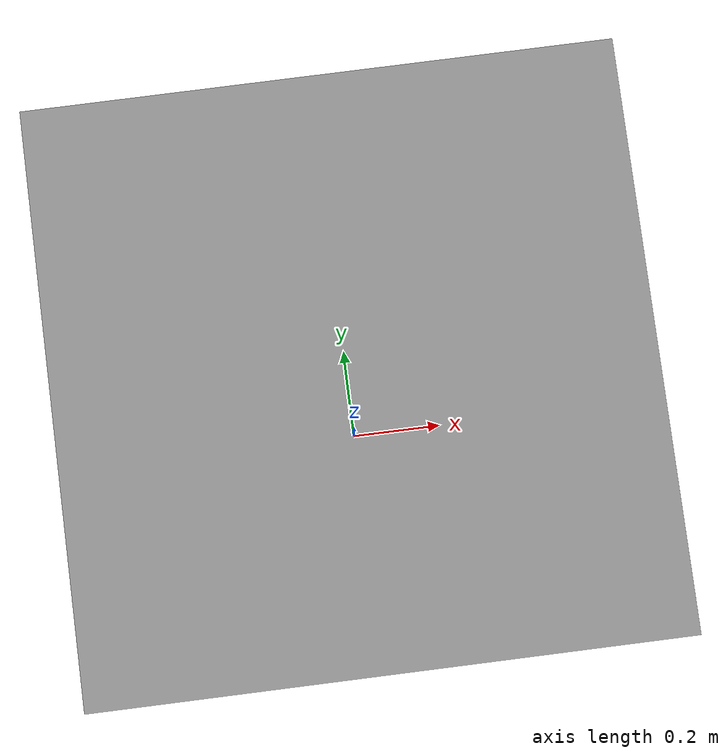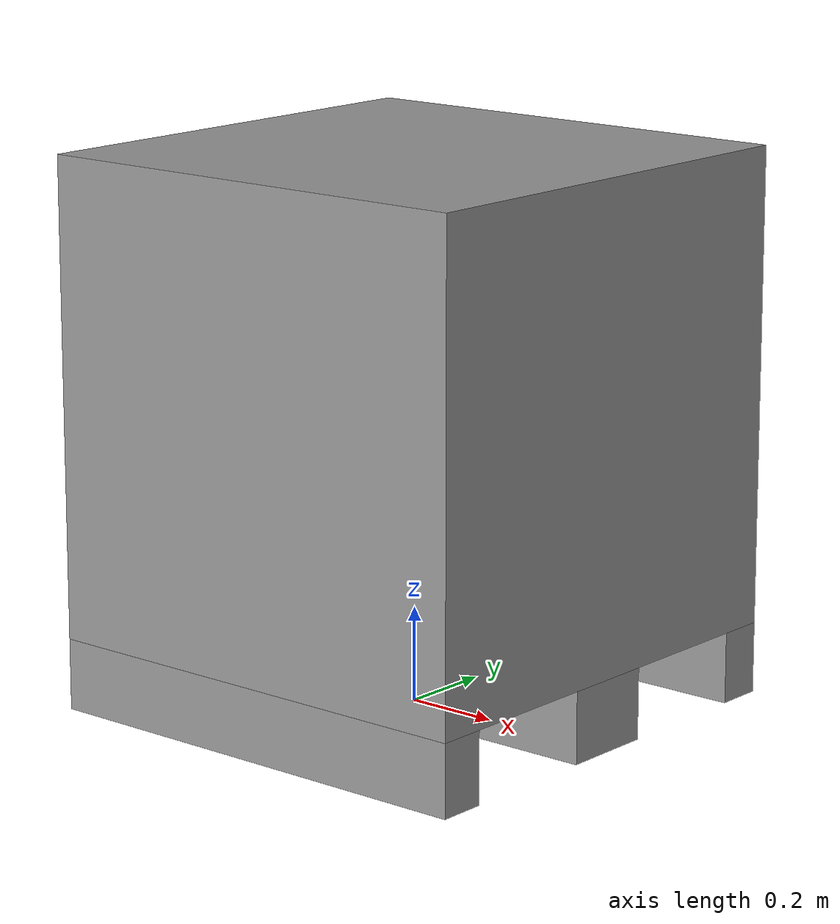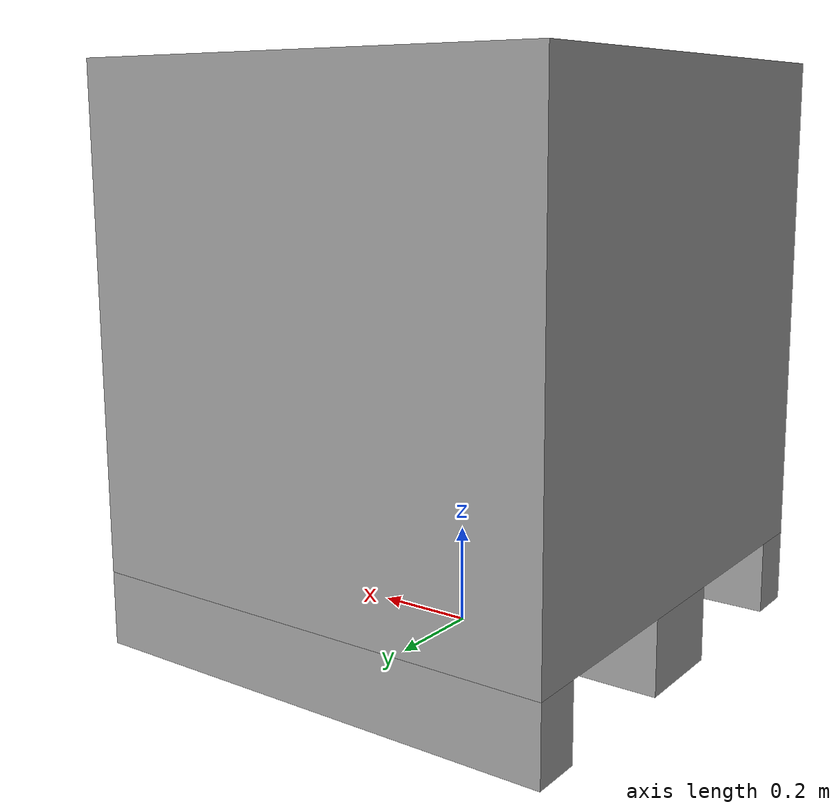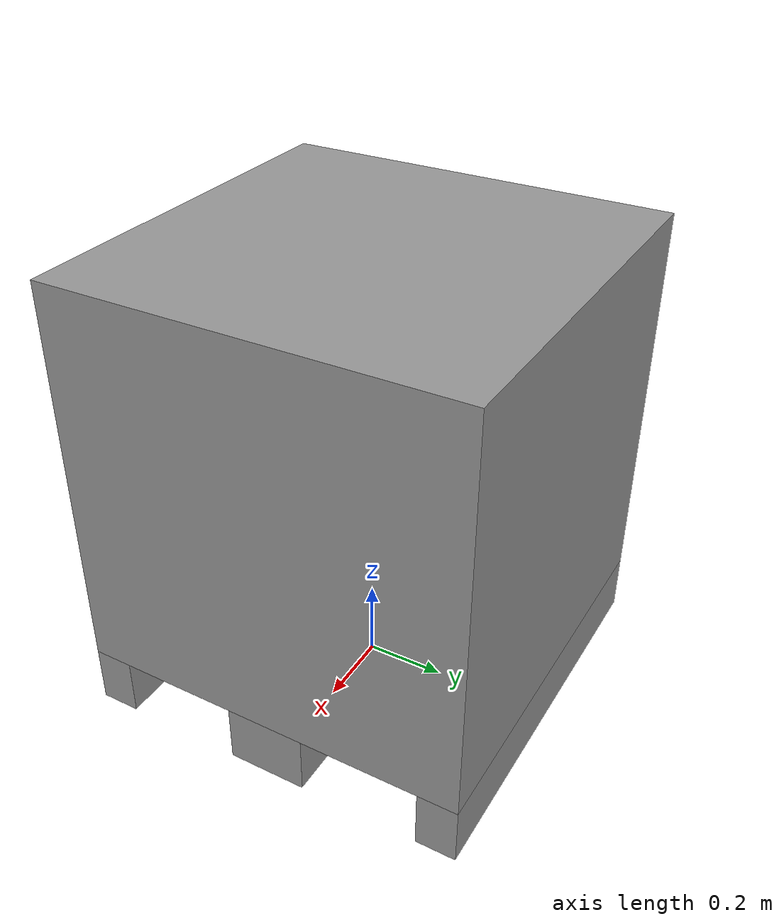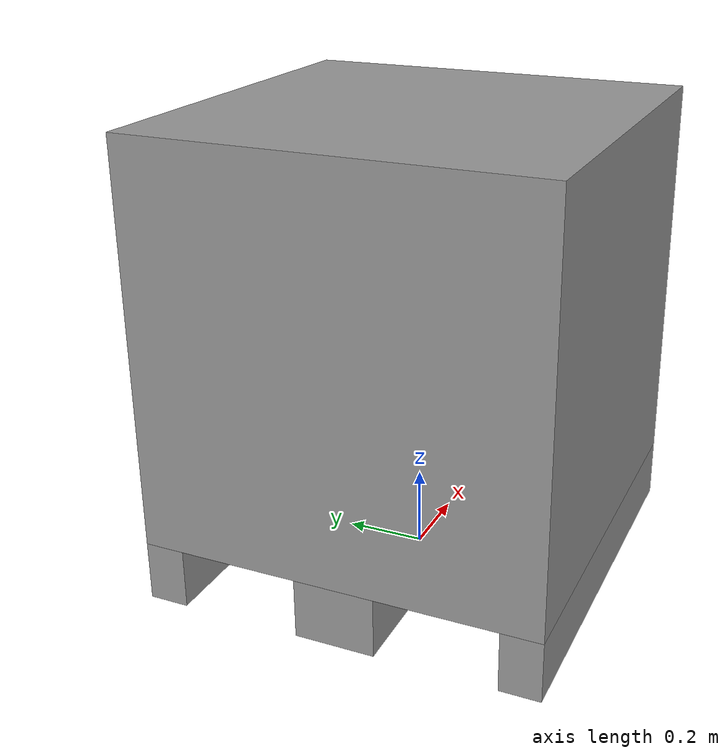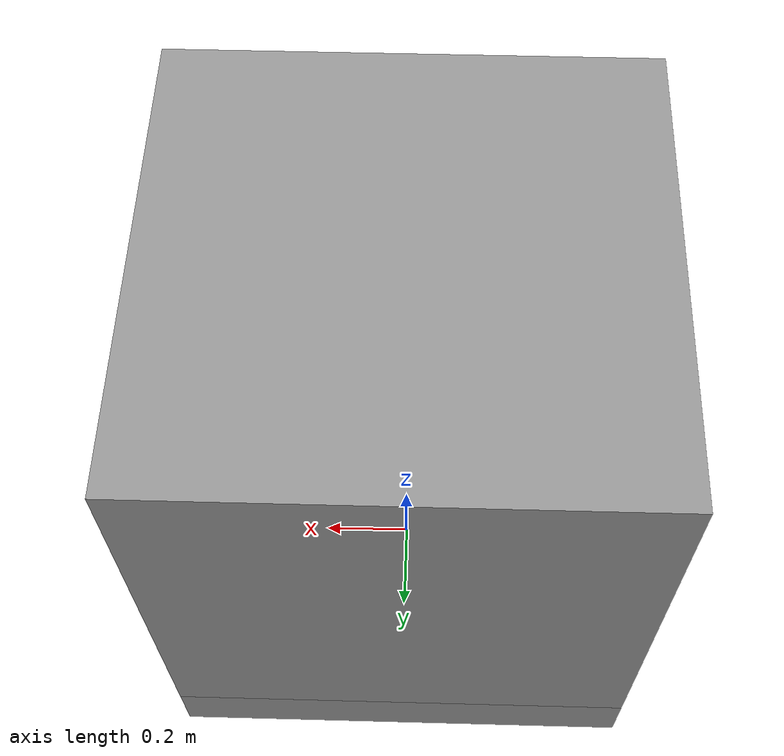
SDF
<?xml version='1.0'?>
<sdf version='1.6'>
	<model name='200k_box'>
		<link name='link'>
			<pose frame=''>0 0 0 0 0 0</pose>
			<inertial>
				<mass>200</mass>
				<inertia>
					<ixx>320</ixx>
					<ixy>320</ixy>
					<ixz>320</ixz>
					<iyy>320</iyy>
					<iyz>320</iyz>
					<izz>320</izz>
				</inertia>
			</inertial>
			<self_collide>0</self_collide>
			<kinematic>0</kinematic>
			<gravity>1</gravity>
			<visual name='visual'>
				<pose frame=''>0 0 .65 0 0 0</pose>
				<geometry>
					<box>
						<size>1 1 1</size>
					</box>
				</geometry>
				<material>
					<script>
						<name>Gazebo/Grey</name>
						<uri>file://media/materials/scripts/gazebo.material</uri>
					</script>
					<ambient>0.3 0.3 0.3 1</ambient>
					<diffuse>0.7 0.7 0.7 1</diffuse>
					<specular>0.01 0.01 0.01 1</specular>
					<emissive>0 0 0 1</emissive>
					<shader type='vertex'>
						<normal_map>__default__</normal_map>
					</shader>
				</material>
				<pose frame=''>0 0 0 0 -0 0</pose>
				<transparency>0</transparency>
				<cast_shadows>1</cast_shadows>
			</visual>
			<collision name='collision'>
				<laser_retro>0</laser_retro>
				<max_contacts>10</max_contacts>
				<pose frame=''>0 0 .65 0 0 0</pose>
				<geometry>
					<box>
						<size>1 1 1</size>
					</box>
				</geometry>
				<surface>
					<friction>
						<ode>
							<mu>100000000</mu>
							<mu2>100000000</mu2>
							<slip1>0</slip1>
							<slip2>0</slip2>
						</ode>
						<torsional>
							<coefficient>1</coefficient>
							<patch_radius>0</patch_radius>
							<surface_radius>0</surface_radius>
							<use_patch_radius>1</use_patch_radius>
							<ode>
								<slip>0</slip>
							</ode>
						</torsional>
					</friction>
					<bounce>
						<restitution_coefficient>0</restitution_coefficient>
						<threshold>1e+06</threshold>
					</bounce>
					<contact>
						<collide_without_contact>0</collide_without_contact>
						<collide_without_contact_bitmask>1</collide_without_contact_bitmask>
						<collide_bitmask>1</collide_bitmask>
						<ode>
							<soft_cfm>0</soft_cfm>
							<soft_erp>0.2</soft_erp>
							<kp>1e+13</kp>
							<kd>1</kd>
							<max_vel>0.01</max_vel>
							<min_depth>0</min_depth>
						</ode>
						<bullet>
							<split_impulse>1</split_impulse>
							<split_impulse_penetration_threshold>-0.01</split_impulse_penetration_threshold>
							<soft_cfm>0</soft_cfm>
							<soft_erp>0.2</soft_erp>
							<kp>1e+13</kp>
							<kd>1</kd>
						</bullet>
					</contact>
				</surface>
			</collision>
			<collision name = "left_c">
				<pose>0 0.45 .075 0 0 0</pose>
				<geometry>
					<box>
						<size>1 .1 .15</size>
					</box>
				</geometry>
			</collision>
			<visual name = 'left_v'>
				<pose>0 0.45 .075 0 0 0</pose>
				<geometry>
					<box>
						<size>1 .1 .15</size>
					</box>
				</geometry>
				<material>
					<script>
						<name>Gazebo/Grey</name>
						<uri>file://media/materials/scripts/gazebo.material</uri>
					</script>
					<ambient>0.3 0.3 0.3 1</ambient>
					<diffuse>0.7 0.7 0.7 1</diffuse>
					<specular>0.01 0.01 0.01 1</specular>
					<emissive>0 0 0 1</emissive>
					<shader type='vertex'>
						<normal_map>__default__</normal_map>
					</shader>
				</material>
				<pose frame=''>0 0 0 0 -0 0</pose>
				<transparency>0</transparency>
				<cast_shadows>1</cast_shadows>
			</visual>
			<collision name = "right_c">
				<pose>0 -0.45 .075 0 0 0</pose>
				<geometry>
					<box>
						<size>1 .1 .15</size>
					</box>
				</geometry>
			</collision>
			<visual name = 'right_v'>
				<pose>0 -0.45 .075 0 0 0</pose>
				<geometry>
					<box>
						<size>1 .1 .15</size>
					</box>
				</geometry>
				<material>
					<script>
						<name>Gazebo/Grey</name>
						<uri>file://media/materials/scripts/gazebo.material</uri>
					</script>
					<ambient>0.3 0.3 0.3 1</ambient>
					<diffuse>0.7 0.7 0.7 1</diffuse>
					<specular>0.01 0.01 0.01 1</specular>
					<emissive>0 0 0 1</emissive>
					<shader type='vertex'>
						<normal_map>__default__</normal_map>
					</shader>
				</material>
				<pose frame=''>0 0 0 0 -0 0</pose>
				<transparency>0</transparency>
				<cast_shadows>1</cast_shadows>
			</visual>
			<collision name = "center_c">
				<pose>0 0 .075 0 0 0</pose>
				<geometry>
					<box>
						<size>1 .2 .15</size>
					</box>
				</geometry>
			</collision>
			<visual name = 'center_v'>
				<pose>0 0 .075 0 0 0</pose>
				<geometry>
					<box>
						<size>1 .2 .15</size>
					</box>
				</geometry>
				<material>
					<script>
						<name>Gazebo/Grey</name>
						<uri>file://media/materials/scripts/gazebo.material</uri>
					</script>
					<ambient>0.3 0.3 0.3 1</ambient>
					<diffuse>0.7 0.7 0.7 1</diffuse>
					<specular>0.01 0.01 0.01 1</specular>
					<emissive>0 0 0 1</emissive>
					<shader type='vertex'>
						<normal_map>__default__</normal_map>
					</shader>
				</material>
				<pose frame=''>0 0 0 0 -0 0</pose>
				<transparency>0</transparency>
				<cast_shadows>1</cast_shadows>
			</visual>
		</link>
	</model>
	<static>0</static>
	<allow_auto_disable>1</allow_auto_disable>
</sdf>
